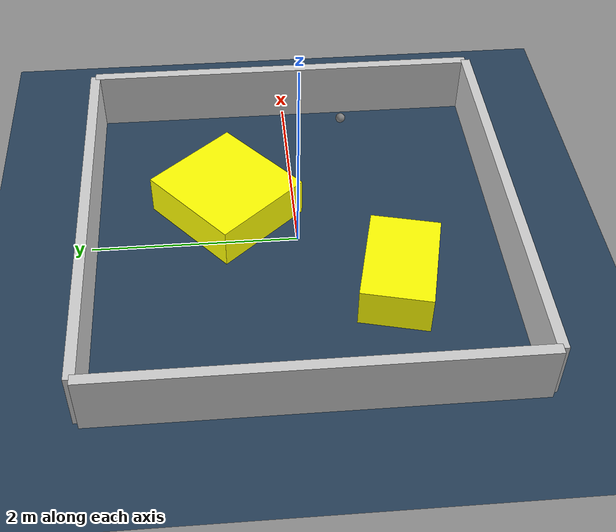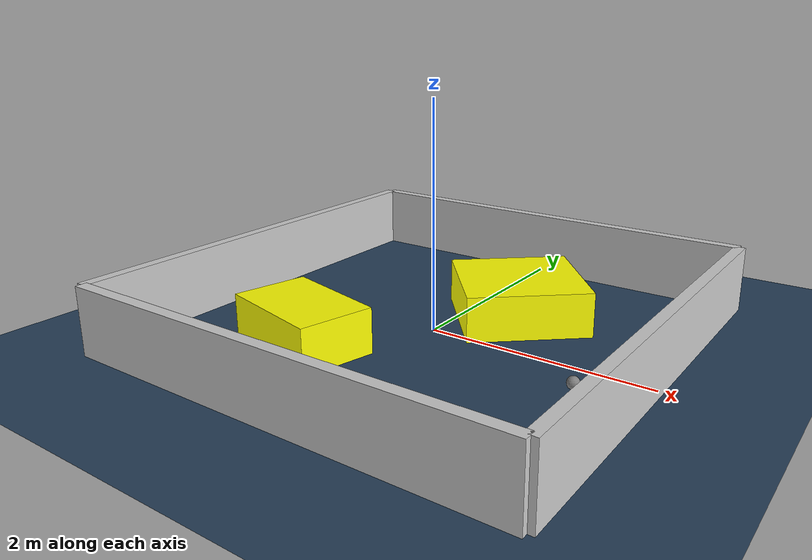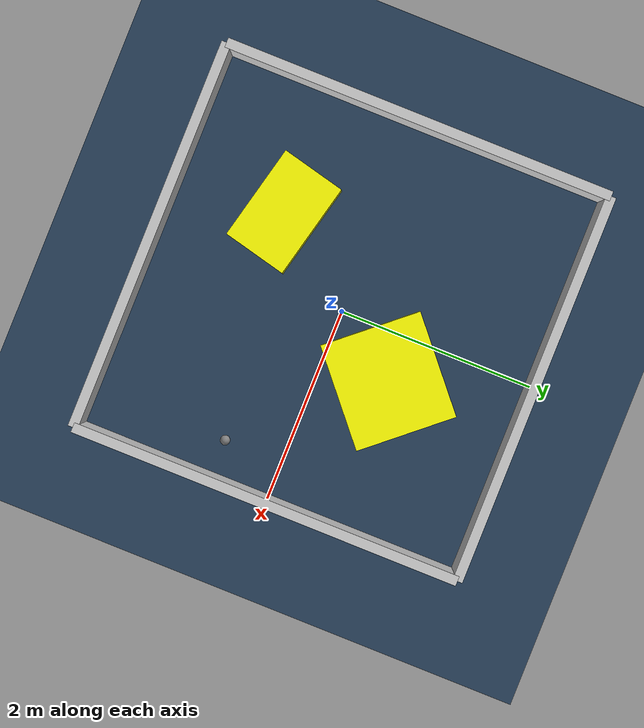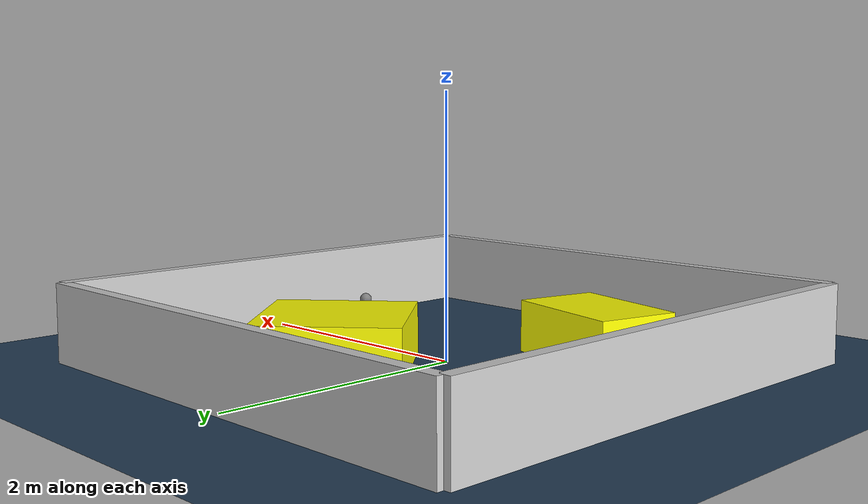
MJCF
<?xml version="1.0" ?>
<mujoco model="generated_environment">
  <option timestep="0.01" integrator="RK4" cone="elliptic"/>
  <default>
    <geom density="1"/>
  </default>
  <asset>
    <texture builtin="gradient" height="3072" rgb1="0.3 0.5 0.7" rgb2="0 0 0" type="skybox" width="512"/>
    <texture builtin="checker" height="300" mark="edge" markrgb="0.8 0.8 0.8" name="groundplane" rgb1="0.2 0.3 0.4" rgb2="0.1 0.2 0.3" type="2d" width="300"/>
    <material name="groundplane" reflectance="0.2" texrepeat="5 5" texture="groundplane" texuniform="true"/>
    <material name="robot" rgba="0.0 1.0 0.0 1"/>
  </asset>
  <worldbody>
    <light dir="0 0 -1" directional="true" pos="0 0 1.5"/>
    <geom condim="4" friction="1.0 0.005 0.001" material="groundplane" name="floor" size="0 0 0.05" type="plane"/>
    <body name="walls">
      <geom name="wall_1" condim="4" pos="-2.0 0.0 0.3" rgba="0.800000011920929 0.800000011920929 0.800000011920929 1.0" size="0.05 2.0 0.3" type="box"/>
      <geom name="wall_2" condim="4" pos="2.0 0.0 0.3" rgba="0.800000011920929 0.800000011920929 0.800000011920929 1.0" size="0.05 2.0 0.3" type="box"/>
      <geom name="wall_3" condim="4" pos="0.0 -2.0 0.3" rgba="0.800000011920929 0.800000011920929 0.800000011920929 1.0" size="2.0 0.05 0.3" type="box"/>
      <geom name="wall_4" condim="4" pos="0.0 2.0 0.3" rgba="0.800000011920929 0.800000011920929 0.800000011920929 1.0" size="2.0 0.05 0.3" type="box"/>
    </body>
    <body name="robot">
      <joint name="joint_x" type="slide" pos="0 0 0" axis="1 0 0"/>
      <joint name="joint_y" type="slide" pos="0 0 0" axis="0 1 0"/>
      <geom name="robot" type="sphere" pos="1.5975572455884062 -0.5982045378724266 0.2" size="0.05" mass="5." friction="1.0 0.005 0.0001" condim="4"/>
      <site name="sensor_ball"/>
    </body>
    <body name="obstacle_1_movable">
      <geom name="obstacle_1_movable" condim="4" pos="0.46085073353749695 0.6708570148698574 0.2" euler="0 0 220.63855290220923" friction="1.0 0.005 0.001" rgba="1 1 0 1" size="0.5434283354605693 0.515321069177334 0.2" type="box" mass="0.1"/>
      <joint type="free"/>
    </body>
    <body name="obstacle_2_movable">
      <geom name="obstacle_2_movable" condim="4" pos="-0.6949024945090038 -0.8876345197550242 0.2" euler="0 0 346.38360002032346" friction="1.0 0.005 0.001" rgba="1 1 0 1" size="0.5003147992188213 0.33261760666495804 0.2" type="box" mass="0.1"/>
      <joint type="free"/>
    </body>
  </worldbody>
  <actuator>
    <motor name="actuator_x" joint="joint_x" gear="1" ctrlrange="-1 1"/>
    <motor name="actuator_y" joint="joint_y" gear="1" ctrlrange="-1 1"/>
  </actuator>
</mujoco>
